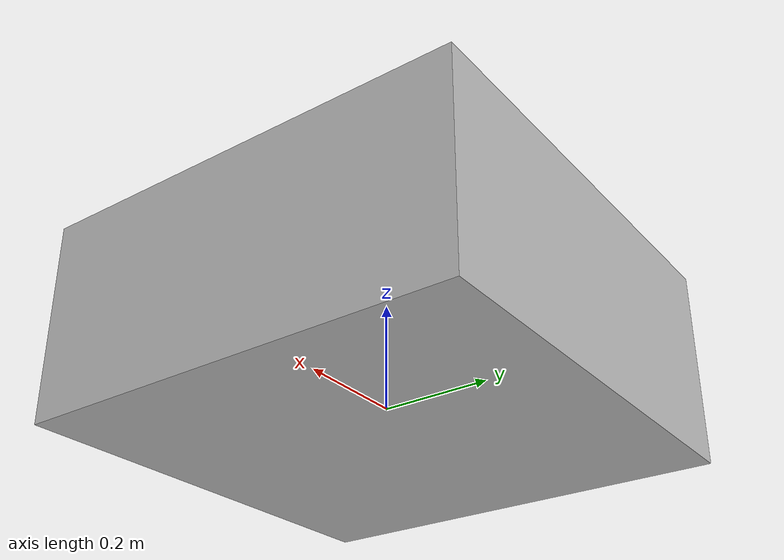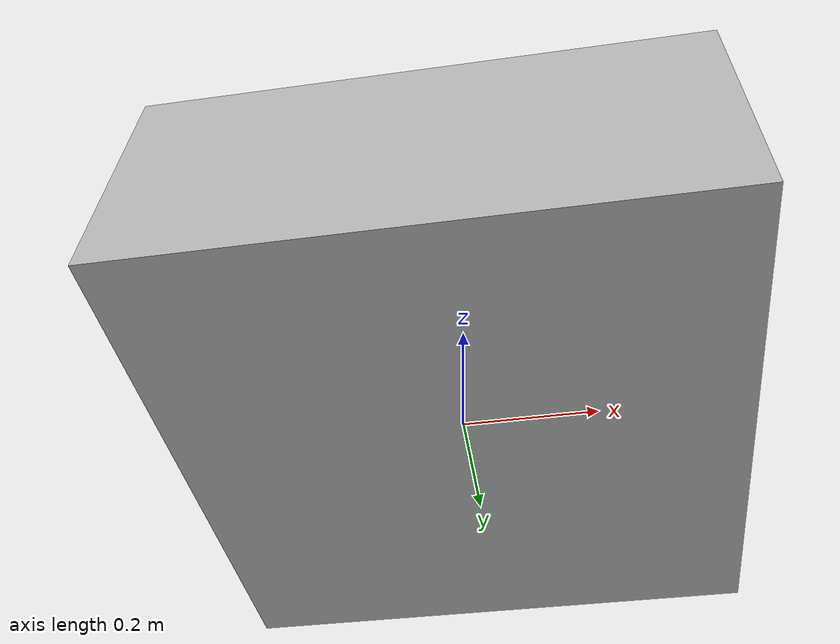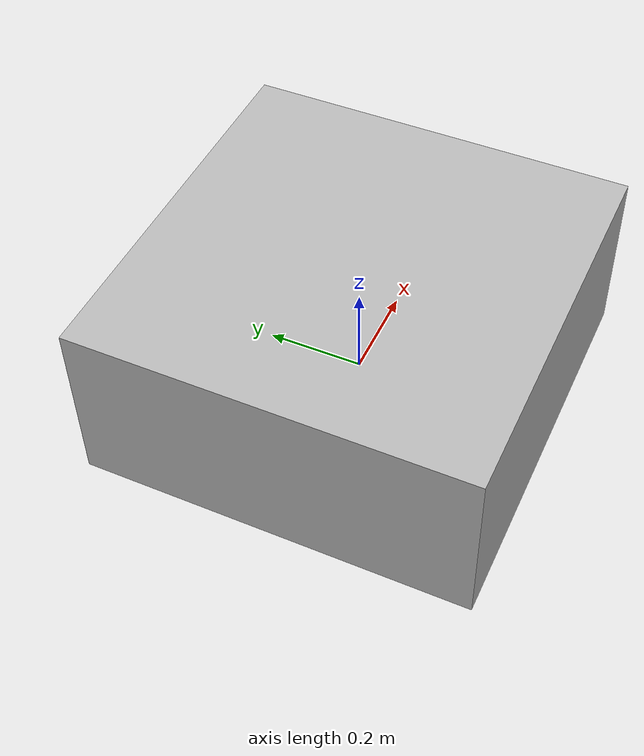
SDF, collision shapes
<?xml version="1.0"?>
<sdf version="1.7">
    <model name="HELIOS">
        <pose>0 0 0.121078 0 0 0</pose>

        <!--Base Link-->
        <link name="base_link">
            <pose frame="">0 0 0 0 -0 0</pose>
            <inertial>
                <pose frame="">0 0 0 0 -0 0</pose>
                <mass>3.76</mass>
                <inertia>
                    <ixx>0.017</ixx>
                    <ixy>0</ixy>
                    <ixz>0</ixz>
                    <iyy>0.018</iyy>
                    <iyz>0</iyz>
                    <izz>0.028</izz>
                </inertia>
            </inertial>
            <collision name="base_link_inertia_collision">
                <pose frame="">0 0 0 0 -0 0</pose>
                <geometry>
                    <box>
                        <size>0.82 0.82 0.375</size>
                    </box>
                </geometry>
            </collision>
            <visual name="base_link_inertia_visual">
                <pose frame="">0 0 0 0 -0 0</pose>
                <geometry>
                    <mesh>
                        <scale>1 1 1</scale>
                        <uri>meshes/m100.dae</uri>
                    </mesh>
                </geometry>
            </visual>

            <!--L/R Flashlights/Sources-->
            <visual name="left_flashlight_led">
                <pose frame="">0.247592 0.24728 -0.017556 0 0 2.35619</pose>
                <geometry>
                    <mesh>
                        <scale>1 1 1</scale>
                        <uri>meshes/cree_xhp70.dae</uri>
                    </mesh>
                </geometry>
            </visual>
            <visual name="right_flashlight_led">
                <pose frame="">0.247592 -0.24728 -0.017556 0 0 0.785398</pose>
                <geometry>
                    <mesh>
                        <scale>1 1 1</scale>
                        <uri>meshes/cree_xhp70.dae</uri>
                    </mesh>
                </geometry>
            </visual>
            <light name="left_light_source" type="spot">
                <pose frame="">0.15 0.2 0.07 3.131592653589795 -1.5107899999999999 -3.741592653589791</pose>
                <attenuation>
                    <range>15</range>
                    <linear>0</linear>
                    <constant>0.1</constant>
                    <quadratic>0.01</quadratic>
                </attenuation>
                <diffuse>0.8 0.8 0.5 1</diffuse>
                <specular>0.8 0.8 0.5 1</specular>
                <spot>
                    <inner_angle>1</inner_angle>
                    <outer_angle>1.5</outer_angle>
                    <falloff>1</falloff>
                </spot>
                <direction>0 0 -1</direction>
                <cast_shadows>1</cast_shadows>
            </light>
            <light name="right_light_source" type="spot">
                <pose frame="">0.15 -0.2 0.07 3.131592653589795 -1.5107899999999999 3.741592653589791</pose>
                <attenuation>
                    <range>15</range>
                    <linear>0</linear>
                    <constant>0.1</constant>
                    <quadratic>0.01</quadratic>
                </attenuation>
                <diffuse>0.8 0.8 0.5 1</diffuse>
                <specular>0.8 0.8 0.5 1</specular>
                <spot>
                    <inner_angle>1</inner_angle>
                    <outer_angle>1.5</outer_angle>
                    <falloff>1</falloff>
                </spot>
                <direction>0 0 -1</direction>
                <cast_shadows>1</cast_shadows>
            </light>

        <!--SENSORS-->

            <!--IMU Sensor-->
            <sensor name="imu_sensor" type="imu">
                <always_on>1</always_on>
                <update_rate>200</update_rate>
                <imu>
                    <enable_orientation>0</enable_orientation>
                    <angular_velocity>
                        <x>
                            <noise type="gaussian">
                                <mean>0</mean>
                                <stddev>0.009</stddev>
                                <bias_mean>0.00075</bias_mean>
                                <bias_stddev>0.005</bias_stddev>
                                <dynamic_bias_stddev>0.00002</dynamic_bias_stddev>
                                <dynamic_bias_correlation_time>400.0</dynamic_bias_correlation_time>
                                <precision>0.00025</precision>
                            </noise>
                        </x>
                        <y>
                            <noise type="gaussian">
                                <mean>0</mean>
                                <stddev>0.009</stddev>
                                <bias_mean>0.00075</bias_mean>
                                <bias_stddev>0.005</bias_stddev>
                                <dynamic_bias_stddev>0.00002</dynamic_bias_stddev>
                                <dynamic_bias_correlation_time>400.0</dynamic_bias_correlation_time>
                                <precision>0.00025</precision>
                            </noise>
                        </y>
                        <z>
                            <noise type="gaussian">
                                <mean>0</mean>
                                <stddev>0.009</stddev>
                                <bias_mean>0.00075</bias_mean>
                                <bias_stddev>0.005</bias_stddev>
                                <dynamic_bias_stddev>0.00002</dynamic_bias_stddev>
                                <dynamic_bias_correlation_time>400.0</dynamic_bias_correlation_time>
                                <precision>0.00025</precision>
                            </noise>
                        </z>
                    </angular_velocity>
                    <linear_acceleration>
                        <x>
                            <noise type="gaussian">
                                <mean>0</mean>
                                <stddev>0.021</stddev>
                                <bias_mean>0.05</bias_mean>
                                <bias_stddev>0.0075</bias_stddev>
                                <dynamic_bias_stddev>0.000375</dynamic_bias_stddev>
                                <dynamic_bias_correlation_time>175.0</dynamic_bias_correlation_time>
                                <precision>0.005</precision>
                            </noise>
                        </x>
                        <y>
                            <noise type="gaussian">
                                <mean>0</mean>
                                <stddev>0.021</stddev>
                                <bias_mean>0.05</bias_mean>
                                <bias_stddev>0.0075</bias_stddev>
                                <dynamic_bias_stddev>0.000375</dynamic_bias_stddev>
                                <dynamic_bias_correlation_time>175.0</dynamic_bias_correlation_time>
                                <precision>0.005</precision>
                            </noise>
                        </y>
                        <z>
                            <noise type="gaussian">
                                <mean>0</mean>
                                <stddev>0.021</stddev>
                                <bias_mean>0.05</bias_mean>
                                <bias_stddev>0.0075</bias_stddev>
                                <dynamic_bias_stddev>0.000375</dynamic_bias_stddev>
                                <dynamic_bias_correlation_time>175.0</dynamic_bias_correlation_time>
                                <precision>0.005</precision>
                            </noise>
                        </z>
                    </linear_acceleration>
                </imu>
                <plugin name="gz::sim::systems::ImuSensor"
                        filename="gz-sim-imu-system" >
                        <topic>/imu</topic>
                </plugin>
	        </sensor>

            <!-- GPS Sensor-->
            <sensor name="gps_sensor" type="gps">
                <always_on>1</always_on>
                <update_rate>5</update_rate>
                <pose>0 0 0 0 0 0</pose>
                <gps>
                    <position_sensing>
                    <horizontal>
                        <noise type="gaussian">
                        <mean>0.0</mean>
                        <stddev>1.0</stddev>
                        </noise>
                    </horizontal>
                    <vertical>
                        <noise type="gaussian">
                        <mean>0.0</mean>
                        <stddev>1.5</stddev>
                        </noise>
                    </vertical>
                    </position_sensing>
                    <velocity_sensing>
                    <horizontal>
                        <noise type="gaussian">
                        <mean>0.0</mean>
                        <stddev>0.1</stddev>
                        </noise>
                    </horizontal>
                    <vertical>
                        <noise type="gaussian">
                        <mean>0.0</mean>
                        <stddev>0.2</stddev>
                        </noise>
                    </vertical>
                    </velocity_sensing>
                </gps>

                <plugin name="gz::sim::systems::GpsSensor"
                        filename="gz-sim-gps-system" />
            </sensor>

            <!--Air Pressure Sensor-->
            <sensor name="air_pressure" type="air_pressure">
                <always_on>1</always_on>
                <update_rate>20</update_rate>
                <air_pressure>
                    <reference_altitude>0</reference_altitude>
                    <noise type="gaussian">
                        <mean>0.00000008</mean>
                    </noise>
                </air_pressure>
            </sensor>

            <!--Magnetometer Sensor-->
            <sensor name="magnetometer" type="magnetometer">
                <always_on>1</always_on>
                <update_rate>20</update_rate>
                <magnetometer>
                    <x>
                        <noise type="gaussian">
                            <mean>0.000000080</mean>
                            <bias_mean>0.000000400</bias_mean>
                        </noise>
                    </x>
                    <y>
                        <noise type="gaussian">
                            <mean>0.000000080</mean>
                            <bias_mean>0.000000400</bias_mean>
                        </noise>
                    </y>
                    <z>
                        <noise type="gaussian">
                            <mean>0.000000080</mean>
                            <bias_mean>0.000000400</bias_mean>
                        </noise>
                    </z>
                </magnetometer>
            </sensor>

            <!--Front Camera Sensor-->
            <visual name="camera_visual">
                <pose>0.192 -0.015 -0.023 0 0.174533 0</pose>
                <geometry>
                    <box>
                        <size>0.02 0.025 0.025</size>
                    </box>
                </geometry>
            </visual>
            <sensor name="camera_front" type="camera">
                <pose>0.192 -0.015 -0.023 0 0.174533 0</pose>
                <always_on>1</always_on>
                <update_rate>20</update_rate>
                <camera name="camera_front">
                    <horizontal_fov>2.0944</horizontal_fov>
                    <lens>
                        <intrinsics>
                            <fx>1108.952913</fx>
                            <fy>1110.658360</fy>
                            <cx>729.533992</cx>
                            <cy>544.985715</cy>
                            <s>1</s>
                        </intrinsics>
                    </lens>
                    <distortion>
                        <k1>0.0</k1>
                        <k2>0.0</k2>
                        <k3>0.0</k3>
                        <p1>0.0</p1>
                        <p2>0.0</p2>
                        <center>0.5 0.5</center>
                    </distortion>
                    <image>
                        <width>1440</width>
                        <height>1080</height>
                        <format>R8G8B8</format>
                    </image>
                    <clip>
                        <near>0.02</near>
                        <far>100</far>
                    </clip>
                    <noise>
                        <type>gaussian</type>
                        <mean>0</mean>
                        <stddev>0.007</stddev>
                    </noise>
                </camera>
            </sensor>

            <!-- Thermal Camera Sensor -->
            <visual name="thermal_camera_visual">
              <pose>0.192 0.015 -0.023 0 0.174533 0</pose>
              <geometry>
                <box>
                  <size>0.02 0.025 0.025</size>
                </box>
              </geometry>
            </visual>
            <sensor name="thermal_camera" type="thermal">
              <pose>0.192 0.015 -0.023 0 0.174533 0</pose>
              <camera name="thermal_camera">
                <horizontal_fov>1.5708</horizontal_fov>
                <lens>
                  <intrinsics>
                    <!-- fx = fy = width / ( 2 * tan (hfov / 2 ) ) -->
                    <fx>320.0</fx>
                    <fy>320.0</fy>
                    <!-- cx = ( width + 1 ) / 2 -->
                    <cx>320.5</cx>
                    <!-- cy = ( height + 1 ) / 2 -->
                    <cy>256.5</cy>
                    <s>0</s>
                  </intrinsics>
                </lens>
                <image>
                  <width>640</width>
                  <height>512</height>
                  <format>L8</format>
                </image>
                <clip>
                  <near>0.1</near>
                  <far>100</far>
                </clip>
              </camera>
              <always_on>1</always_on>
              <update_rate>30</update_rate>
              <plugin
                filename="gz-sim-thermal-sensor-system"
                name="gz::sim::systems::ThermalSensor">
                <min_temp>253.15</min_temp>
                <max_temp>673.15</max_temp>
                <resolution>1.6</resolution>
              </plugin>
            </sensor>

            <!--Front Laser Sensor (LIDAR)-->
            <visual name="laser_visual">
                <pose>0 0 0.05 0 0 0</pose>
                <geometry>
                    <cylinder>
                        <radius>0.03</radius>
                        <length>0.1</length>
                    </cylinder>
                </geometry>
            </visual>
            <sensor name="front_laser" type="gpu_ray">
				<!-- The laser is patterned off of the X1 medium range lidar.
					We believe this is based on a Velodyne Puck Lite
					which weighs 590 g -->
                <pose>0 0 0.05 0 0 0</pose>
                <update_rate>10</update_rate>
                <lidar>
                    <scan>
                        <horizontal>
                            <samples>1800</samples>
                            <resolution>1</resolution>
                            <min_angle>-3.14159</min_angle>
                            <max_angle>3.14159</max_angle>
                        </horizontal>
                        <vertical>
                            <samples>16</samples>
                            <resolution>1</resolution>
                            <min_angle>-0.261799</min_angle>
                            <max_angle>0.261799</max_angle>
                        </vertical>
                    </scan>
                    <range>
                        <min>0.05</min>
                        <max>100</max>
                        <resolution>0.01</resolution>
                    </range>
                    <noise>
                        <type>gaussian</type>
                        <mean>0</mean>
                        <stddev>0.03</stddev>
                    </noise>
                </lidar>
            </sensor>
        </link>

        <!--ROTOR LINKS/JOINTS-->
        <link name="rotor_0"> <!--Front Right-->
            <pose frame="">0.2263 -0.2263 0.038 0 0 0</pose>
            <inertial>
                <pose frame="">0 0 0 0 -0 0</pose>
                <mass>0.005</mass>
                <inertia>
                    <ixx>9.75e-07</ixx>
                    <ixy>0</ixy>
                    <ixz>0</ixz>
                    <iyy>8.13545e-05</iyy>
                    <iyz>0</iyz>
                    <izz>8.22545e-05</izz>
                </inertia>
            </inertial>
            <collision name="rotor_0_collision">
                <pose frame="">0 0 0 0 -0 0</pose>
                <geometry>
                    <cylinder>
                        <length>0.005</length>
                        <radius>0.175</radius>
                    </cylinder>
                </geometry>
                <surface>
                    <contact>
                        <ode/>
                    </contact>
                    <friction>
                        <ode/>
                    </friction>
                </surface>
            </collision>
            <visual name="rotor_0_visual">
                <pose frame="">0 0 0 0 -0 0</pose>
                <geometry>
                    <mesh>
                        <scale>0.175 0.175 0.175</scale>
                        <uri>meshes/m100_propeller_ccw.dae</uri>
                    </mesh>
                </geometry>
                <material>
                    <diffuse>1 0 0 1</diffuse>
                    <script>
                        <name>Gazebo/Red</name>
                        <uri>file://media/materials/scripts/gazebo.material</uri>
                    </script>
                </material>
                <cast_shadows>0</cast_shadows>
            </visual>
            <gravity>1</gravity>
            <velocity_decay/>
        </link>
        <joint name="rotor_0_joint" type="revolute">
            <child>rotor_0</child>
            <parent>base_link</parent>
            <axis>
                <xyz>0 0 1</xyz>
                <limit>
                    <lower>-1e+16</lower>
                    <upper>1e+16</upper>
                </limit>
                <dynamics>
                    <spring_reference>0</spring_reference>
                    <spring_stiffness>0</spring_stiffness>
                </dynamics>
                <use_parent_model_frame>1</use_parent_model_frame>
            </axis>
        </joint>
        <plugin filename="gz-sim-multicopter-motor-model-system"
                    name="gz::sim::systems::MulticopterMotorModel">
            <robotNamespace>HELIOS</robotNamespace>
            <jointName>rotor_0_joint</jointName>
            <linkName>rotor_0</linkName>
            <turningDirection>ccw</turningDirection>
            <motorType>velocity</motorType>
            <motorConstant>8.54858e-06</motorConstant>
            <momentConstant>0.016</momentConstant>
            <commandSubTopic>/gazebo/command/motor_speed</commandSubTopic>
            <motorSpeedPubTopic>motor_speed/0</motorSpeedPubTopic>
            <motorNumber>0</motorNumber>
        </plugin>

        <link name="rotor_1"> <!--Back Left-->
            <pose frame="">-0.2263 0.2263 0.038 0 0 0</pose>
            <inertial>
                <pose frame="">0 0 0 0 -0 0</pose>
                <mass>0.005</mass>
                <inertia>
                    <ixx>9.75e-07</ixx>
                    <ixy>0</ixy>
                    <ixz>0</ixz>
                    <iyy>8.13545e-05</iyy>
                    <iyz>0</iyz>
                    <izz>8.22545e-05</izz>
                </inertia>
            </inertial>
            <collision name="rotor_1_collision">
                <pose frame="">0 0 0 0 -0 0</pose>
                <geometry>
                    <cylinder>
                        <length>0.005</length>
                        <radius>0.175</radius>
                    </cylinder>
                </geometry>
                <surface>
                    <contact>
                        <ode/>
                    </contact>
                    <friction>
                        <ode/>
                    </friction>
                </surface>
            </collision>
            <visual name="rotor_1_visual">
                <pose frame="">0 0 0 0 -0 0</pose>
                <geometry>
                    <mesh>
                        <scale>0.175 0.175 0.175</scale>
                        <uri>meshes/m100_propeller_ccw.dae</uri>
                    </mesh>
                </geometry>
                <material>
                    <diffuse>0 0 1 1</diffuse>
                    <script>
                        <name>Gazebo/Blue</name>
                        <uri>file://media/materials/scripts/gazebo.material</uri>
                    </script>
                </material>
                <cast_shadows>0</cast_shadows>
            </visual>
            <gravity>1</gravity>
            <velocity_decay/>
        </link>
        <joint name="rotor_1_joint" type="revolute">
            <child>rotor_1</child>
            <parent>base_link</parent>
            <axis>
                <xyz>0 0 1</xyz>
                <limit>
                    <lower>-1e+16</lower>
                    <upper>1e+16</upper>
                </limit>
                <dynamics>
                    <spring_reference>0</spring_reference>
                    <spring_stiffness>0</spring_stiffness>
                </dynamics>
                <use_parent_model_frame>1</use_parent_model_frame>
            </axis>
        </joint>
        <plugin filename="gz-sim-multicopter-motor-model-system"
                    name="gz::sim::systems::MulticopterMotorModel">
            <robotNamespace>HELIOS</robotNamespace>
            <jointName>rotor_1_joint</jointName>
            <linkName>rotor_1</linkName>
            <turningDirection>ccw</turningDirection>
            <motorType>velocity</motorType>
            <motorConstant>8.54858e-06</motorConstant>
            <momentConstant>0.016</momentConstant>
            <commandSubTopic>/gazebo/command/motor_speed</commandSubTopic>
            <motorSpeedPubTopic>motor_speed/1</motorSpeedPubTopic>
            <motorNumber>1</motorNumber>
        </plugin>

        <link name="rotor_2"> <!--Front Left-->
            <pose frame="">0.2263 0.2263 0.038 0 0 0</pose>
            <inertial>
                <pose frame="">0 0 0 0 -0 0</pose>
                <mass>0.005</mass>
                <inertia>
                    <ixx>9.75e-07</ixx>
                    <ixy>0</ixy>
                    <ixz>0</ixz>
                    <iyy>8.13545e-05</iyy>
                    <iyz>0</iyz>
                    <izz>8.22545e-05</izz>
                </inertia>
            </inertial>
            <collision name="rotor_2_collision">
                <pose frame="">0 0 0 0 -0 0</pose>
                <geometry>
                    <cylinder>
                        <length>0.005</length>
                        <radius>0.175</radius>
                    </cylinder>
                </geometry>
                <surface>
                    <contact>
                        <ode/>
                    </contact>
                    <friction>
                        <ode/>
                    </friction>
                </surface>
            </collision>
            <visual name="rotor_2_visual">
                <pose frame="">0 0 0 0 -0 0</pose>
                <geometry>
                    <mesh>
                        <scale>0.175 0.175 0.175</scale>
                        <uri>meshes/m100_propeller_cw.dae</uri>
                    </mesh>
                </geometry>
                <material>
                    <diffuse>1 0 0 1</diffuse>
                    <script>
                        <name>Gazebo/Red</name>
                        <uri>file://media/materials/scripts/gazebo.material</uri>
                    </script>
                </material>
                <cast_shadows>0</cast_shadows>
            </visual>
            <gravity>1</gravity>
            <velocity_decay/>
        </link>
        <joint name="rotor_2_joint" type="revolute">
            <child>rotor_2</child>
            <parent>base_link</parent>
            <axis>
                <xyz>0 0 1</xyz>
                <limit>
                    <lower>-1e+16</lower>
                    <upper>1e+16</upper>
                </limit>
                <dynamics>
                    <spring_reference>0</spring_reference>
                    <spring_stiffness>0</spring_stiffness>
                </dynamics>
                <use_parent_model_frame>1</use_parent_model_frame>
            </axis>
        </joint>
        <plugin filename="gz-sim-multicopter-motor-model-system"
                    name="gz::sim::systems::MulticopterMotorModel">
            <robotNamespace>HELIOS</robotNamespace>
            <jointName>rotor_2_joint</jointName>
            <linkName>rotor_2</linkName>
            <turningDirection>cw</turningDirection>
            <motorType>velocity</motorType>
            <motorConstant>8.54858e-06</motorConstant>
            <momentConstant>0.016</momentConstant>
            <commandSubTopic>/gazebo/command/motor_speed</commandSubTopic>
            <motorSpeedPubTopic>motor_speed/2</motorSpeedPubTopic>
            <motorNumber>2</motorNumber>
        </plugin>

        <link name="rotor_3"> <!--Back Right-->
            <pose frame="">-0.2263 -0.2263 0.038 0 0 0</pose>
            <inertial>
                <pose frame="">0 0 0 0 -0 0</pose>
                <mass>0.005</mass>
                <inertia>
                    <ixx>9.75e-07</ixx>
                    <ixy>0</ixy>
                    <ixz>0</ixz>
                    <iyy>8.13545e-05</iyy>
                    <iyz>0</iyz>
                    <izz>8.22545e-05</izz>
                </inertia>
            </inertial>
            <collision name="rotor_3_collision">
                <pose frame="">0 0 0 0 -0 0</pose>
                <geometry>
                    <cylinder>
                        <length>0.005</length>
                        <radius>0.175</radius>
                    </cylinder>
                </geometry>
                <surface>
                    <contact>
                        <ode/>
                    </contact>
                    <friction>
                        <ode/>
                    </friction>
                </surface>
            </collision>
            <visual name="rotor_3_visual">
                <pose frame="">0 0 0 0 -0 0</pose>
                <geometry>
                    <mesh>
                        <scale>0.175 0.175 0.175</scale>
                        <uri>meshes/m100_propeller_cw.dae</uri>
                    </mesh>
                </geometry>
                <material>
                    <diffuse>0 0 1 1</diffuse>
                    <script>
                        <name>Gazebo/Blue</name>
                        <uri>file://media/materials/scripts/gazebo.material</uri>
                    </script>
                </material>
                <cast_shadows>0</cast_shadows>
            </visual>
            <gravity>1</gravity>
            <velocity_decay/>
        </link>
        <joint name="rotor_3_joint" type="revolute">
            <child>rotor_3</child>
            <parent>base_link</parent>
            <axis>
                <xyz>0 0 1</xyz>
                <limit>
                    <lower>-1e+16</lower>
                    <upper>1e+16</upper>
                </limit>
                <dynamics>
                    <spring_reference>0</spring_reference>
                    <spring_stiffness>0</spring_stiffness>
                </dynamics>
                <use_parent_model_frame>1</use_parent_model_frame>
            </axis>
        </joint>
        <plugin filename="gz-sim-multicopter-motor-model-system"
                    name="gz::sim::systems::MulticopterMotorModel">
            <robotNamespace>HELIOS</robotNamespace>
            <jointName>rotor_3_joint</jointName>
            <linkName>rotor_3</linkName>
            <turningDirection>cw</turningDirection>
            <motorType>velocity</motorType>
            <motorConstant>8.54858e-06</motorConstant>
            <momentConstant>0.016</momentConstant>
            <commandSubTopic>/gazebo/command/motor_speed</commandSubTopic>
            <motorSpeedPubTopic>motor_speed/3</motorSpeedPubTopic>
            <motorNumber>3</motorNumber>
        </plugin>

      <plugin filename="gz-sim-multicopter-control-system"
        name="gz::sim::systems::MulticopterVelocityControl">
            <robotNamespace>HELIOS</robotNamespace>
            <commandSubTopic>command/trajectory</commandSubTopic>
            <enableSubTopic>enable</enableSubTopic>
            <comLinkName>base_link</comLinkName>
            <velocityGain>2.7 2.7 2.7</velocityGain>
            <attitudeGain>2 2 2</attitudeGain>
            <angularRateGain>0.5 0.5 0.5</angularRateGain>
            <maximumLinearAcceleration>2 2 2</maximumLinearAcceleration>
            <maximumLinearVelocity>5 5 5</maximumLinearVelocity>
            <maximumAngularVelocity>3 3 3</maximumAngularVelocity>
            <rotorConfiguration>
                <rotor>
                <jointName>rotor_0_joint</jointName>
                <forceConstant>8.54858e-06</forceConstant>
                <momentConstant>0.016</momentConstant>
                <direction>1</direction>
                </rotor>
                <rotor>
                <jointName>rotor_1_joint</jointName>
                <forceConstant>8.54858e-06</forceConstant>
                <momentConstant>0.016</momentConstant>
                <direction>1</direction>
                </rotor>
                <rotor>
                <jointName>rotor_2_joint</jointName>
                <forceConstant>8.54858e-06</forceConstant>
                <momentConstant>0.016</momentConstant>
                <direction>-1</direction>
                </rotor>
                <rotor>
                <jointName>rotor_3_joint</jointName>
                <forceConstant>8.54858e-06</forceConstant>
                <momentConstant>0.016</momentConstant>
                <direction>-1</direction>
                </rotor>
            </rotorConfiguration>
        </plugin>

        <plugin filename="libmavlink_sitl_ign_gazebo.so"
        name="gz::sim::systems::MavlinkInterface">
            <robotNamespace>HELIOS</robotNamespace>

            <!-- PX4 UDP ports (match your SITL defaults) -->
            <mavlink_udp_port>14560</mavlink_udp_port>
            <qgc_udp_port>14550</qgc_udp_port>
            <sdk_udp_port>14540</sdk_udp_port>

            <!-- topic over which the motor commands arrive -->
            <motorSpeedCommandPubTopic>/gazebo/command/motor_speed</motorSpeedCommandPubTopic>

            <!-- sensor topics for PX4 SITL -->
            <imuSubTopic>/imu</imuSubTopic>

            <!-- leave serialDisabled for SITL -->
            <serialEnabled>0</serialEnabled>
            <hil_mode>0</hil_mode>
        </plugin>

    </model>
</sdf>
